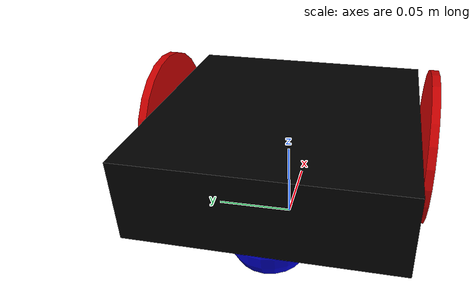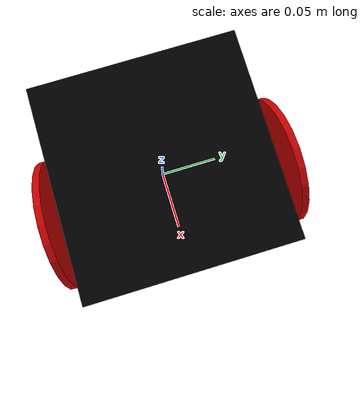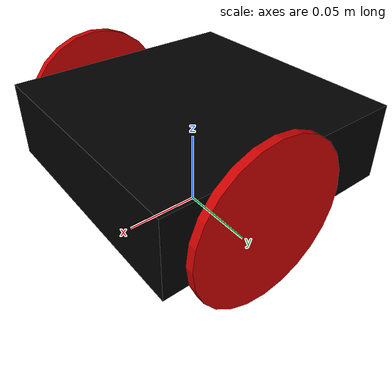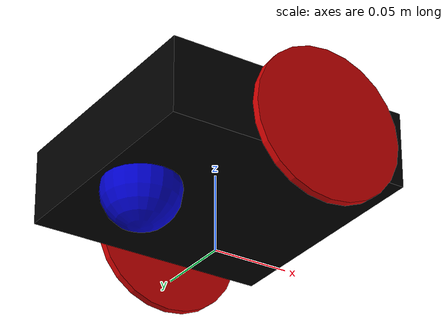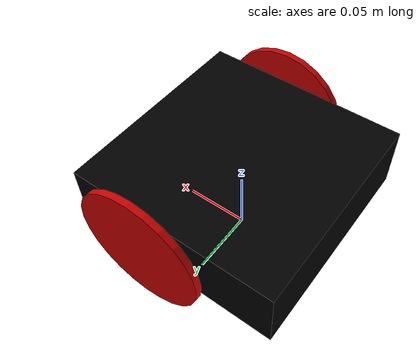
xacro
<?xml version="1.0"?>
<robot xmlns:xacro="http://www.ros.org/wiki/xacro" name="ros">

  <xacro:property name="base_width" value="0.16"/>
  <xacro:property name="base_len" value="0.16"/>
  <xacro:property name="wheel_radius" value="0.05"/>
  <xacro:property name="base_wheel_gap" value="0.007"/>
  <xacro:property name="wheel_separation" value="0.15"/>
  <xacro:property name="wheel_joint_offset" value="0.02"/>

  <xacro:property name="caster_wheel_radius" value="${wheel_radius/2}"/>
  <xacro:property name="caster_wheel_mass" value="0.001"/>
  <xacro:property name="caster_wheel_joint_offset" value="-0.052"/>

  <!--Color Properties-->
  <material name="blue">
    <color rgba="0 0 0.8 1"/>
  </material>
  <material name="black">
    <color rgba="0 0 0 1"/>
  </material>
  <material name="white">
    <color rgba="1 1 1 1"/>
  </material>
  <material name="red">
    <color rgba="0.8 0.0 0.0 1.0"/>
  </material>

  <!--Interial macros-->
  <xacro:macro name="cylinder_inertia" params="m r h">
    <inertial>
      <mass value="${m}"/>
      <inertia ixx="${m*(3*r*r+h*h)/12}" ixy = "0" ixz = "0" iyy="${m*(3*r*r+h*h)/12}" iyz = "0" izz="${m*r*r/2}"/>
    </inertial>
  </xacro:macro>

  <xacro:macro name="box_inertia" params="m w h d">
    <inertial>
      <mass value="${m}"/>
      <inertia ixx="${m / 12.0 * (d*d + h*h)}" ixy="0.0" ixz="0.0" iyy="${m / 12.0 * (w*w + h*h)}" iyz="0.0" izz="${m / 12.0 * (w*w + d*d)}"/>
    </inertial>
  </xacro:macro>

  <xacro:macro name="sphere_inertia" params="m r">
    <inertial>
      <mass value="${m}"/>
      <inertia ixx="${2.0*m*(r*r)/5.0}" ixy="0.0" ixz="0.0" iyy="${2.0*m*(r*r)/5.0}" iyz="0.0" izz="${2.0*m*(r*r)/5.0}"/>
    </inertial>
  </xacro:macro>

  <!--Base Footprint-->
  <link name="base_footprint">
    <xacro:box_inertia m="10" w="0.001" h="0.001" d="0.001"/>
    <visual>
        <origin xyz="0 0 0" rpy="0 0 0" />
        <geometry>
            <box size="0.001 0.001 0.001" />
        </geometry>
    </visual>
  </link>

  <!--Base link-->
  <link name="base_link">
    <xacro:box_inertia m="10" w="${base_len}" h="${base_width}" d="0.05"/>
    <visual>
      <geometry>
        <box size="${base_len} ${base_width} 0.05"/>
      </geometry>
      <material name="black"/>
    </visual>
    <collision>
      <geometry>
        <box size="${base_len} ${base_width} 0.05"/>
      </geometry>
    </collision>
  </link>
  <gazebo reference="base_link">
    <material>Gazebo/Blue</material>
  </gazebo>

  <!--base_link to base_footprint Joint-->
  <joint name="base_link_joint" type="fixed">
    <origin xyz="0 0 ${wheel_radius + 0.005}" rpy="0 0 0" />
    <parent link="base_footprint"/>
    <child link="base_link" />
  </joint>

  <!--Wheel link & joint macro-->
  <xacro:macro name="wheel" params="prefix reflect">
    <link name="${prefix}_wheel">
      <visual>
        <origin xyz="0 0 0" rpy="${pi/2} 0 0"/>
        <geometry>
          <cylinder radius="${wheel_radius}" length="0.005"/>
        </geometry>
        <material name="red"/>
      </visual>
      <collision>
        <origin xyz="0 0 0" rpy="${pi/2} 0 0"/>
        <geometry>
          <cylinder radius="${wheel_radius}" length="0.005"/>
        </geometry>
      </collision>
      <xacro:cylinder_inertia m="10" r="${wheel_radius}" h="0.005"/>
    </link>

    <joint name="${prefix}_wheel_joint" type="continuous">
      <axis xyz="0 1 0" rpy="0 0 0" />
      <parent link="base_link"/>
      <child link="${prefix}_wheel"/>
      <origin xyz="${wheel_joint_offset} ${((base_width/2)+base_wheel_gap)*reflect} -0.005" rpy="0 0 0"/>
    </joint>

    <gazebo reference="${prefix}_wheel">
      <kp value="1000000.0" />
      <kd value="1.0" />
      <material>Gazebo/Orange</material>
    </gazebo>

  </xacro:macro>

  <!--Create Left & Right Wheel links/joints-->
  <xacro:wheel prefix="left" reflect="1"/>
  <xacro:wheel prefix="right" reflect="-1"/>

  <!--Caster Wheel Link-->
  <link name="caster_wheel">
    <visual>
      <origin xyz="0 0 0" rpy="0 0 0"/>
      <geometry>
        <sphere radius="${caster_wheel_radius}"/>
      </geometry>
      <material name="blue"/>
    </visual>
    <collision>
      <origin xyz="0 0 0" rpy="0 0 0"/>
      <geometry>
        <sphere radius="${caster_wheel_radius}"/>
      </geometry>
    </collision>
    <xacro:sphere_inertia m="10" r="${caster_wheel_radius}"/>
  </link>

  <!--Caster Wheel Joint-->
  <joint name="caster_wheel_joint" type="continuous">
    <axis xyz="0 1 0" rpy="0 0 0" />
    <parent link="base_link"/>
    <child link="caster_wheel"/>
    <origin xyz="${caster_wheel_joint_offset} 0 -${caster_wheel_radius+0.005}" rpy="0 0 0"/>
  </joint>

  <gazebo>
    <plugin name="differential_drive_controller" filename="libgazebo_ros_diff_drive.so">
      <alwaysOn>false</alwaysOn>
      <legacyMode>false</legacyMode>
      <updateRate>20</updateRate>
      <leftJoint>left_wheel_joint</leftJoint>
      <rightJoint>right_wheel_joint</rightJoint>
      <wheelSeparation>${wheel_separation}</wheelSeparation>
      <wheelDiameter>${wheel_radius * 2}</wheelDiameter>
      <torque>20</torque>
      <commandTopic>/cmd_vel</commandTopic>
      <odometryTopic>/odom</odometryTopic>
      <odometryFrame>odom</odometryFrame>
      <robotBaseFrame>base_footprint</robotBaseFrame>
      <rosDebugLevel>Debug</rosDebugLevel>
      <publishWheelTF>true</publishWheelTF>
      <publishOdomTF>true</publishOdomTF>
      <publishWheelJointState>true</publishWheelJointState>
      <wheelAcceleration>5</wheelAcceleration>
      <wheelTorque>20</wheelTorque>
      <publishTf>1</publishTf>
      <odometrySource>encoder</odometrySource>
    </plugin>
  </gazebo>

</robot>
